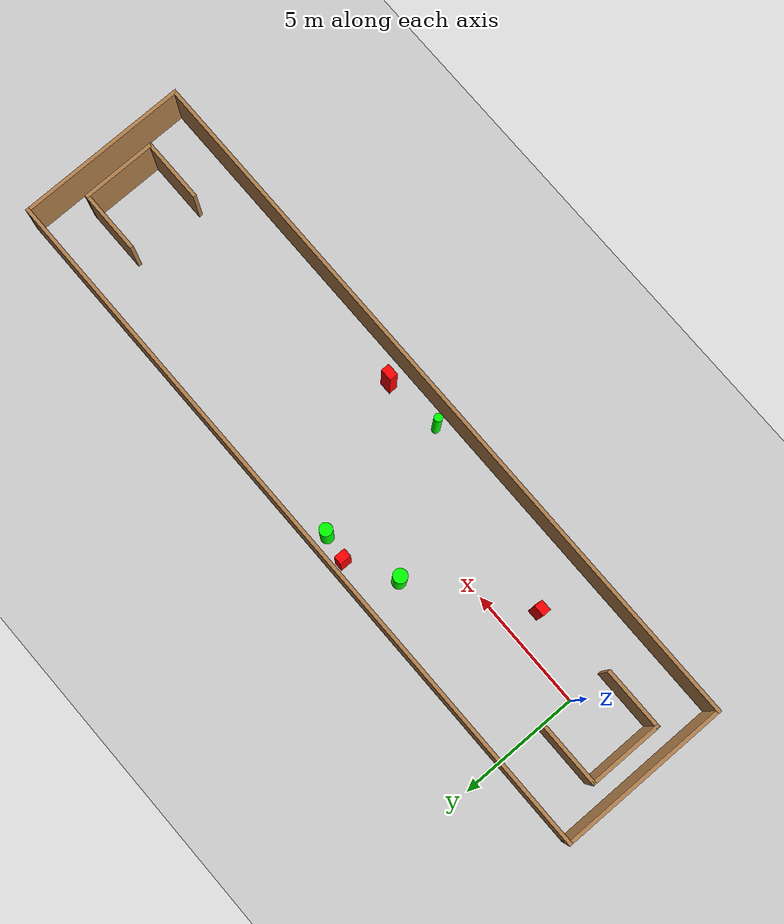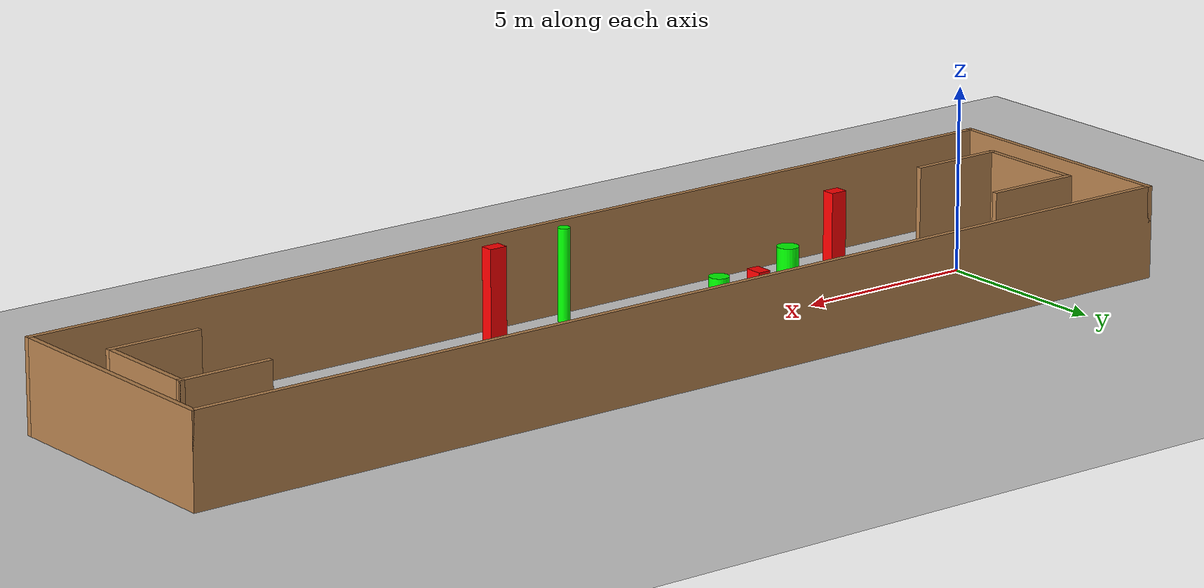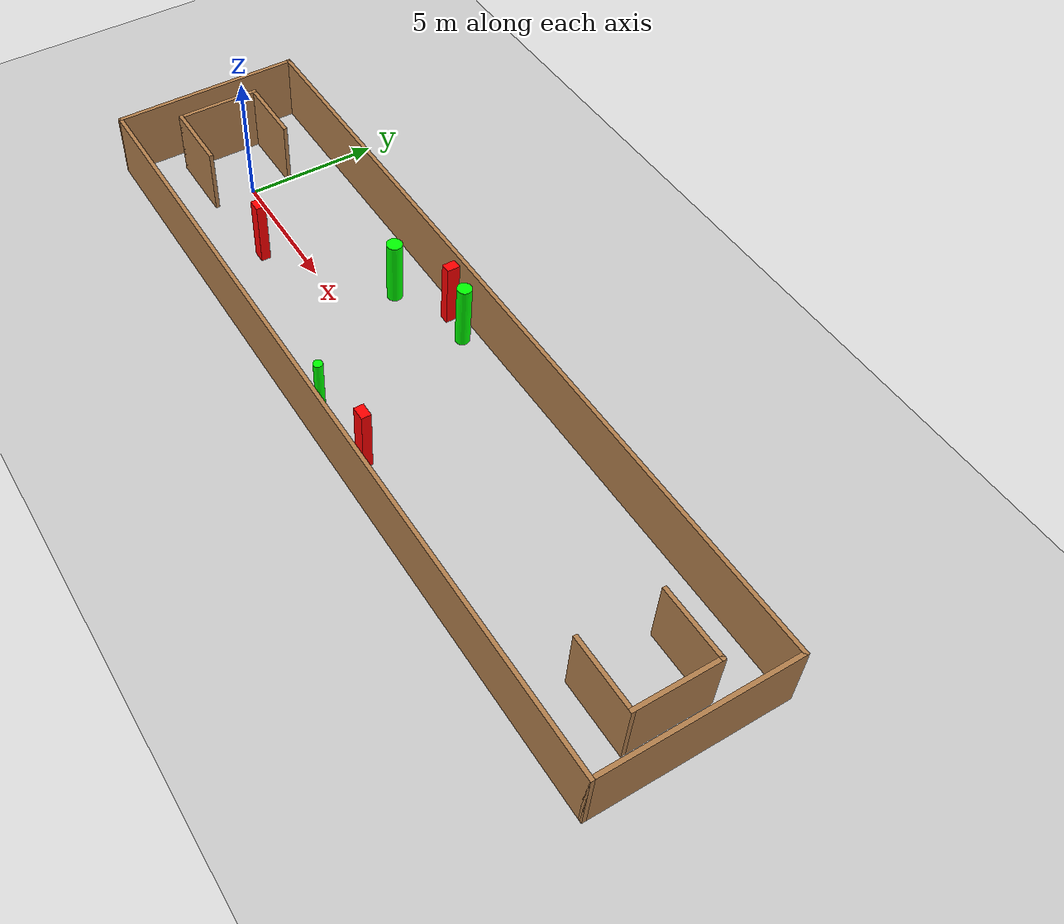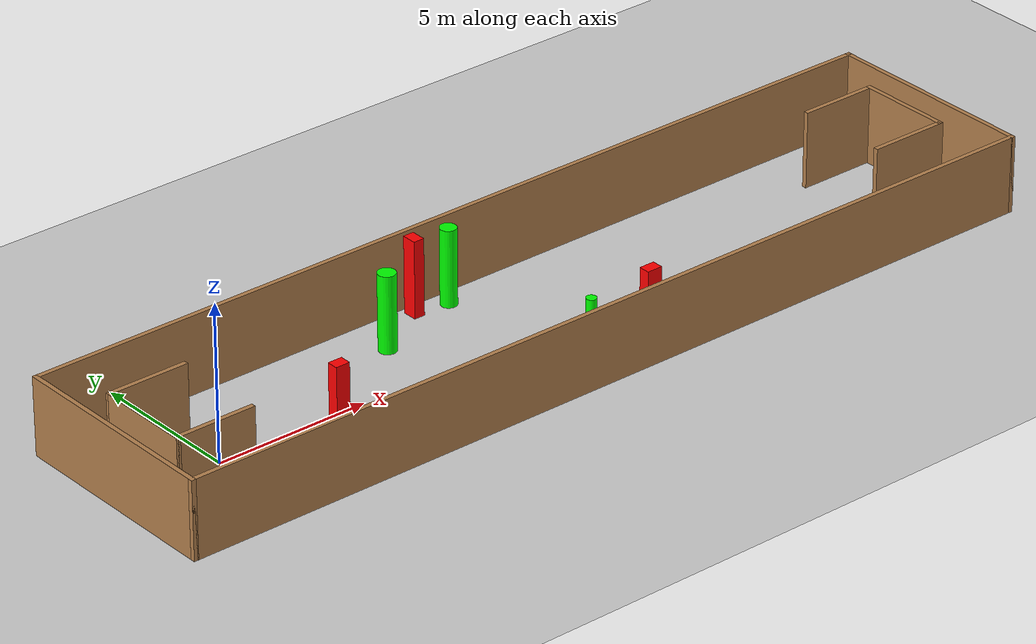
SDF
<sdf version="1.7">
 <world name="default">
  <light name="sun" type="directional">
   <pose>0 0 10 0 -0 0</pose>
   <diffuse>0.8 0.8 0.8 1</diffuse>
   <specular>0.2 0.2 0.2 1</specular>
   <attenuation>
    <range>1000</range>
    <constant>0.9</constant>
    <linear>0.01</linear>
    <quadratic>0.001</quadratic>
   </attenuation>
   <direction>-0.5 0.1 -0.9</direction>
   <spot><inner_angle>0</inner_angle><outer_angle>0</outer_angle><falloff>0</falloff></spot>
  </light>
  <model name="ground_plane">
   <static>1</static>
   <link name="link">
    <collision name="collision">
     <geometry><plane><normal>0 0 1</normal><size>100 100</size></plane></geometry>
     <surface>
      <contact><collide_bitmask>65535</collide_bitmask></contact>
      <friction><ode><mu>100</mu><mu2>50</mu2></ode></friction>
     </surface>
    </collision>
    <visual name="visual">
     <cast_shadows>0</cast_shadows>
     <geometry><plane><normal>0 0 1</normal><size>100 100</size></plane></geometry>
     <material>
      <script><uri>file://media/materials/scripts/gazebo.material</uri><name>Gazebo/Grey</name></script>
     </material>
    </visual>
   </link>
  </model>
  <gravity>0 0 -9.8</gravity>
  <magnetic_field>6e-06 2.3e-05 -4.2e-05</magnetic_field>
  <atmosphere type="adiabatic"/>
  <physics type="ode">
   <max_step_size>0.001</max_step_size>
   <real_time_factor>1</real_time_factor>
   <real_time_update_rate>1000</real_time_update_rate>
  </physics>
  <scene><ambient>0.4 0.4 0.4 1</ambient><background>0.7 0.7 0.7 1</background><shadows>1</shadows></scene>
  <spherical_coordinates>
   <surface_model>EARTH_WGS84</surface_model>
   <latitude_deg>0</latitude_deg>
   <longitude_deg>0</longitude_deg>
   <elevation>0</elevation>
   <heading_deg>0</heading_deg>
  </spherical_coordinates>
  <model name="my_base_walls">
   <link name="Wall_0">
    <collision name="Wall_0_Collision">
     <geometry><box><size>7.15 0.15 2.5</size></box></geometry>
     <pose>0 0 1.25 0 -0 0</pose>
    </collision>
    <visual name="Wall_0_Visual">
     <pose>0 0 1.25 0 -0 0</pose>
     <geometry><box><size>7.15 0.15 2.5</size></box></geometry>
     <material>
      <script><uri>file://media/materials/scripts/gazebo.material</uri><name>Gazebo/Wood</name></script>
      <ambient>1 1 1 1</ambient>
     </material>
     <meta><layer>0</layer></meta>
    </visual>
    <pose>-15 0 0 0 -0 1.5708</pose>
   </link>
   <link name="Wall_10">
    <collision name="Wall_10_Collision">
     <geometry><box><size>2.65 0.15 2.5</size></box></geometry>
     <pose>0 0 1.25 0 -0 0</pose>
    </collision>
    <visual name="Wall_10_Visual">
     <pose>0 0 1.25 0 -0 0</pose>
     <geometry><box><size>2.65 0.15 2.5</size></box></geometry>
     <material>
      <script><uri>file://media/materials/scripts/gazebo.material</uri><name>Gazebo/Wood</name></script>
      <ambient>1 1 1 1</ambient>
     </material>
     <meta><layer>0</layer></meta>
    </visual>
    <pose>-12.75 -1.5 0 0 -0 0</pose>
   </link>
   <link name="Wall_12">
    <collision name="Wall_12_Collision">
     <geometry><box><size>2.65 0.15 2.5</size></box></geometry>
     <pose>0 0 1.25 0 -0 0</pose>
    </collision>
    <visual name="Wall_12_Visual">
     <pose>0 0 1.25 0 -0 0</pose>
     <geometry><box><size>2.65 0.15 2.5</size></box></geometry>
     <material>
      <script><uri>file://media/materials/scripts/gazebo.material</uri><name>Gazebo/Wood</name></script>
      <ambient>1 1 1 1</ambient>
     </material>
     <meta><layer>0</layer></meta>
    </visual>
    <pose>-12.75 1.5 0 0 -0 0</pose>
   </link>
   <link name="Wall_14">
    <collision name="Wall_14_Collision">
     <geometry><box><size>3.15 0.15 2.5</size></box></geometry>
     <pose>0 0 1.25 0 -0 0</pose>
    </collision>
    <visual name="Wall_14_Visual">
     <pose>0 0 1.25 0 -0 0</pose>
     <geometry><box><size>3.15 0.15 2.5</size></box></geometry>
     <material>
      <script><uri>file://media/materials/scripts/gazebo.material</uri><name>Gazebo/Wood</name></script>
      <ambient>1 1 1 1</ambient>
     </material>
     <meta><layer>0</layer></meta>
    </visual>
    <pose>14 0 0 0 -0 -1.5708</pose>
   </link>
   <link name="Wall_15">
    <collision name="Wall_15_Collision">
     <geometry><box><size>2.65 0.15 2.5</size></box></geometry>
     <pose>0 0 1.25 0 -0 0</pose>
    </collision>
    <visual name="Wall_15_Visual">
     <pose>0 0 1.25 0 -0 0</pose>
     <geometry><box><size>2.65 0.15 2.5</size></box></geometry>
     <material>
      <script><uri>file://media/materials/scripts/gazebo.material</uri><name>Gazebo/Wood</name></script>
      <ambient>1 1 1 1</ambient>
     </material>
     <meta><layer>0</layer></meta>
    </visual>
    <pose>12.75 -1.5 0 0 -0 3.14159</pose>
   </link>
   <link name="Wall_17">
    <collision name="Wall_17_Collision">
     <geometry><box><size>2.65 0.15 2.5</size></box></geometry>
     <pose>0 0 1.25 0 -0 0</pose>
    </collision>
    <visual name="Wall_17_Visual">
     <pose>0 0 1.25 0 -0 0</pose>
     <geometry><box><size>2.65 0.15 2.5</size></box></geometry>
     <material>
      <script><uri>file://media/materials/scripts/gazebo.material</uri><name>Gazebo/Wood</name></script>
      <ambient>1 1 1 1</ambient>
     </material>
     <meta><layer>0</layer></meta>
    </visual>
    <pose>12.75 1.5 0 0 -0 3.14159</pose>
   </link>
   <link name="Wall_2">
    <collision name="Wall_2_Collision">
     <geometry><box><size>30.15 0.15 2.5</size></box></geometry>
     <pose>0 0 1.25 0 -0 0</pose>
    </collision>
    <visual name="Wall_2_Visual">
     <pose>0 0 1.25 0 -0 0</pose>
     <geometry><box><size>30.15 0.15 2.5</size></box></geometry>
     <material>
      <script><uri>file://media/materials/scripts/gazebo.material</uri><name>Gazebo/Wood</name></script>
      <ambient>1 1 1 1</ambient>
     </material>
     <meta><layer>0</layer></meta>
    </visual>
    <pose>-0 -3.5 0 0 -0 0</pose>
   </link>
   <link name="Wall_4">
    <collision name="Wall_4_Collision">
     <geometry><box><size>30.15 0.15 2.5</size></box></geometry>
     <pose>0 0 1.25 0 -0 0</pose>
    </collision>
    <visual name="Wall_4_Visual">
     <pose>0 0 1.25 0 -0 0</pose>
     <geometry><box><size>30.15 0.15 2.5</size></box></geometry>
     <material>
      <script><uri>file://media/materials/scripts/gazebo.material</uri><name>Gazebo/Wood</name></script>
      <ambient>1 1 1 1</ambient>
     </material>
     <meta><layer>0</layer></meta>
    </visual>
    <pose>-0 3.5 0 0 -0 0</pose>
   </link>
   <link name="Wall_6">
    <collision name="Wall_6_Collision">
     <geometry><box><size>7.15 0.15 2.5</size></box></geometry>
     <pose>0 0 1.25 0 -0 0</pose>
    </collision>
    <visual name="Wall_6_Visual">
     <pose>0 0 1.25 0 -0 0</pose>
     <geometry><box><size>7.15 0.15 2.5</size></box></geometry>
     <material>
      <script><uri>file://media/materials/scripts/gazebo.material</uri><name>Gazebo/Wood</name></script>
      <ambient>1 1 1 1</ambient>
     </material>
     <meta><layer>0</layer></meta>
    </visual>
    <pose>15 0 0 0 -0 -1.5708</pose>
   </link>
   <link name="Wall_9">
    <collision name="Wall_9_Collision">
     <geometry><box><size>3.15 0.15 2.5</size></box></geometry>
     <pose>0 0 1.25 0 -0 0</pose>
    </collision>
    <visual name="Wall_9_Visual">
     <pose>0 0 1.25 0 -0 0</pose>
     <geometry><box><size>3.15 0.15 2.5</size></box></geometry>
     <material>
      <script><uri>file://media/materials/scripts/gazebo.material</uri><name>Gazebo/Wood</name></script>
      <ambient>1 1 1 1</ambient>
     </material>
     <meta><layer>0</layer></meta>
    </visual>
    <pose>-14 0 0 0 -0 -1.5708</pose>
   </link>
   <static>1</static>
   <pose>11.5 0 0 0 -0 0</pose>
  </model>
  <model name="cylinder1">
   <static>1</static>
   <link name="link">
    <inertial>
     <mass>1</mass>
     <inertia><ixx>0.5</ixx><ixy>0</ixy><ixz>0</ixz><iyy>0.5</iyy><iyz>0</iyz><izz>1</izz></inertia>
    </inertial>
    <collision name="collision">
     <geometry><cylinder><radius>0.2846947922936359</radius><length>2.5</length></cylinder></geometry>
    </collision>
    <visual name="visual">
     <geometry><cylinder><radius>0.2846947922936359</radius><length>2.5</length></cylinder></geometry>
     <material>
      <ambient>0 1 0 1</ambient>
      <diffuse>0 1 0 1</diffuse>
      <specular>0.1 0.1 0.1 1</specular>
      <emissive>0 0 0 0</emissive>
     </material>
    </visual>
   </link>
   <pose>7.385852900887034 1.9015630726031976 1.25 0 0 0</pose>
  </model>
  <model name="cylinder2">
   <static>1</static>
   <link name="link">
    <inertial>
     <mass>1</mass>
     <inertia><ixx>0.5</ixx><ixy>0</ixy><ixz>0</ixz><iyy>0.5</iyy><iyz>0</iyz><izz>1</izz></inertia>
    </inertial>
    <collision name="collision">
     <geometry><cylinder><radius>0.26299250821398656</radius><length>2.5</length></cylinder></geometry>
    </collision>
    <visual name="visual">
     <geometry><cylinder><radius>0.26299250821398656</radius><length>2.5</length></cylinder></geometry>
     <material>
      <ambient>0 1 0 1</ambient>
      <diffuse>0 1 0 1</diffuse>
      <specular>0.1 0.1 0.1 1</specular>
      <emissive>0 0 0 0</emissive>
     </material>
    </visual>
   </link>
   <pose>10.37714854941058 2.8392984891750706 1.25 0 0 0</pose>
  </model>
  <model name="cylinder3">
   <static>1</static>
   <link name="link">
    <inertial>
     <mass>1</mass>
     <inertia><ixx>0.5</ixx><ixy>0</ixy><ixz>0</ixz><iyy>0.5</iyy><iyz>0</iyz><izz>1</izz></inertia>
    </inertial>
    <collision name="collision">
     <geometry><cylinder><radius>0.1657116863528016</radius><length>2.5</length></cylinder></geometry>
    </collision>
    <visual name="visual">
     <geometry><cylinder><radius>0.1657116863528016</radius><length>2.5</length></cylinder></geometry>
     <material>
      <ambient>0 1 0 1</ambient>
      <diffuse>0 1 0 1</diffuse>
      <specular>0.1 0.1 0.1 1</specular>
      <emissive>0 0 0 0</emissive>
     </material>
    </visual>
   </link>
   <pose>10.828388409321052 -2.882184467687427 1.25 0 0 0</pose>
  </model>
  <model name="box1">
   <static>1</static>
   <link name="link">
    <inertial>
     <mass>1</mass>
     <inertia><ixx>0.083</ixx><ixy>0</ixy><ixz>0</ixz><iyy>0.083</iyy><iyz>0</iyz><izz>0.083</izz></inertia>
    </inertial>
    <collision name="collision">
     <geometry><box><size>0.4664285626628553 0.35700446822426757 2.5</size></box></geometry>
    </collision>
    <visual name="visual">
     <geometry><box><size>0.4664285626628553 0.35700446822426757 2.5</size></box></geometry>
     <material>
      <ambient>1 0 0 1</ambient>
      <diffuse>1 0 0 1</diffuse>
      <specular>0.1 0.1 0.1 1</specular>
      <emissive>0 0 0 0</emissive>
     </material>
    </visual>
    <sensor name="my_contact" type="contact">
     <contact><collision>box_collision</collision><topic>__default_topic__</topic></contact>
    </sensor>
   </link>
   <pose>3.235218085810855 -1.1897073806418854 1.25 0 0 0</pose>
  </model>
  <model name="box2">
   <static>1</static>
   <link name="link">
    <inertial>
     <mass>1</mass>
     <inertia><ixx>0.083</ixx><ixy>0</ixy><ixz>0</ixz><iyy>0.083</iyy><iyz>0</iyz><izz>0.083</izz></inertia>
    </inertial>
    <collision name="collision">
     <geometry><box><size>0.35478213326298547 0.478748604698673 2.5</size></box></geometry>
    </collision>
    <visual name="visual">
     <geometry><box><size>0.35478213326298547 0.478748604698673 2.5</size></box></geometry>
     <material>
      <ambient>1 0 0 1</ambient>
      <diffuse>1 0 0 1</diffuse>
      <specular>0.1 0.1 0.1 1</specular>
      <emissive>0 0 0 0</emissive>
     </material>
    </visual>
    <sensor name="my_contact" type="contact">
     <contact><collision>box_collision</collision><topic>__default_topic__</topic></contact>
    </sensor>
   </link>
   <pose>9.252259910923133 3.01148805978813 1.25 0 0 0</pose>
  </model>
  <model name="box3">
   <static>1</static>
   <link name="link">
    <inertial>
     <mass>1</mass>
     <inertia><ixx>0.083</ixx><ixy>0</ixy><ixz>0</ixz><iyy>0.083</iyy><iyz>0</iyz><izz>0.083</izz></inertia>
    </inertial>
    <collision name="collision">
     <geometry><box><size>0.5018560383259831 0.35337326428876403 2.5</size></box></geometry>
    </collision>
    <visual name="visual">
     <geometry><box><size>0.5018560383259831 0.35337326428876403 2.5</size></box></geometry>
     <material>
      <ambient>1 0 0 1</ambient>
      <diffuse>1 0 0 1</diffuse>
      <specular>0.1 0.1 0.1 1</specular>
      <emissive>0 0 0 0</emissive>
     </material>
    </visual>
    <sensor name="my_contact" type="contact">
     <contact><collision>box_collision</collision><topic>__default_topic__</topic></contact>
    </sensor>
   </link>
   <pose>13.23860905621621 -2.627084938713561 1.25 0 0 0</pose>
  </model>
 </world>
</sdf>
